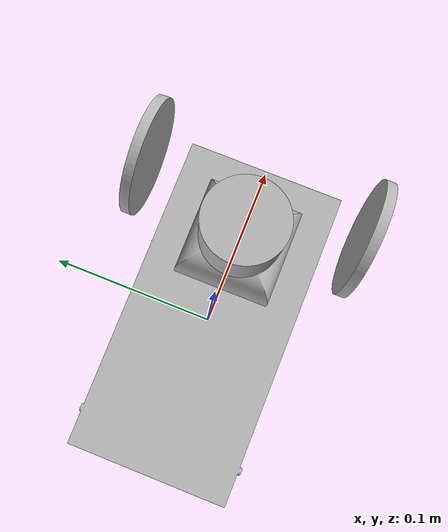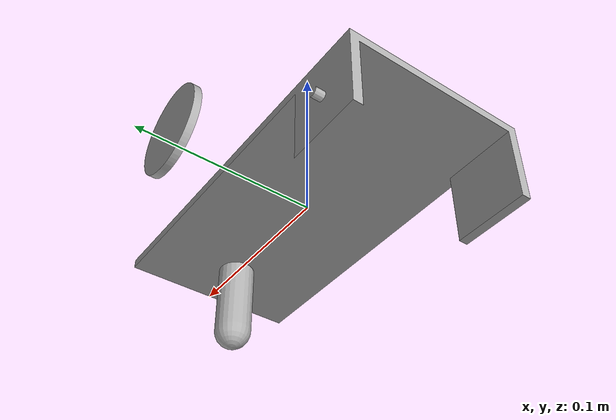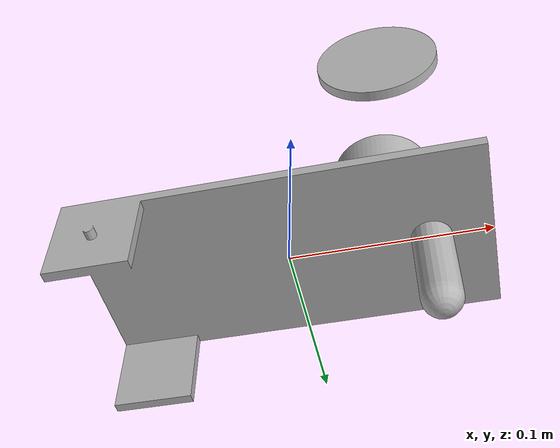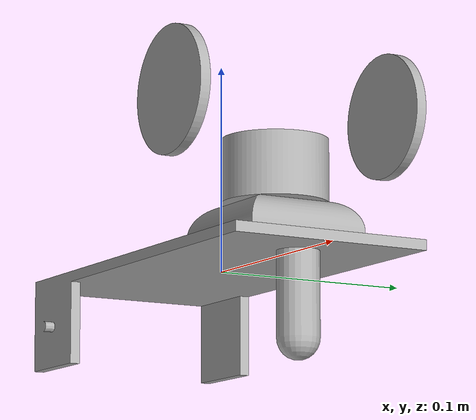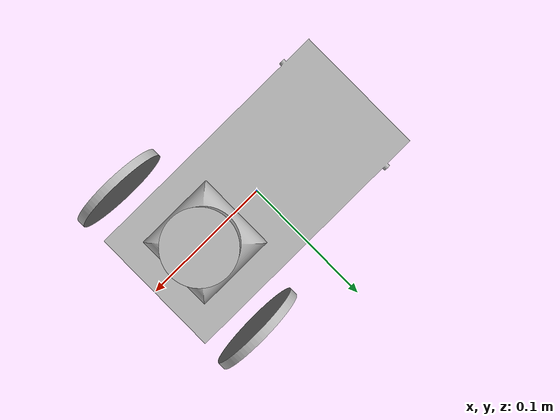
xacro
<?xml version="1.0" ?>
<robot name="line" xmlns:xacro="http://www.ros.org/wiki/xacro">

<xacro:include filename="$(find line_description)/urdf/materials.xacro" />
<xacro:include filename="$(find line_description)/urdf/line.trans" />
<xacro:include filename="$(find line_description)/urdf/line.gazebo" />
<link name="base_link">
  <inertial>
    <origin xyz="-0.002059149497132684 -5.2127163661440005e-17 -0.003185796874806724" rpy="0 0 0"/>
    <mass value="1.0272283547721792"/>
    <inertia ixx="0.001093" iyy="0.004157" izz="0.004954" ixy="-0.0" iyz="-0.0" ixz="-8e-06"/>
  </inertial>
  <visual>
    <origin xyz="0 0 0" rpy="0 0 0"/>
    <geometry>
      <mesh filename="package://line_description/meshes/base_link.stl" scale="0.001 0.001 0.001"/>
    </geometry>
    <material name="silver"/>
  </visual>
  <collision>
    <origin xyz="0 0 0" rpy="0 0 0"/>
    <geometry>
      <mesh filename="package://line_description/meshes/base_link.stl" scale="0.001 0.001 0.001"/>
    </geometry>
  </collision>
</link>

<link name="left_wheel_1">
  <inertial>
    <origin xyz="1.3877787807814457e-17 0.0025000000000000022 1.0408340855860843e-17" rpy="0 0 0"/>
    <mass value="0.11097676048805935"/>
    <inertia ixx="2.5e-05" iyy="5e-05" izz="2.5e-05" ixy="0.0" iyz="0.0" ixz="0.0"/>
  </inertial>
  <visual>
    <origin xyz="0.08 -0.055 0.02" rpy="0 0 0"/>
    <geometry>
      <mesh filename="package://line_description/meshes/left_wheel_1.stl" scale="0.001 0.001 0.001"/>
    </geometry>
    <material name="silver"/>
  </visual>
  <collision>
    <origin xyz="0.08 -0.055 0.02" rpy="0 0 0"/>
    <geometry>
      <mesh filename="package://line_description/meshes/left_wheel_1.stl" scale="0.001 0.001 0.001"/>
    </geometry>
  </collision>
</link>

<link name="right_wheel_1">
  <inertial>
    <origin xyz="1.3877787807814457e-17 -0.0025000000000000022 0.0" rpy="0 0 0"/>
    <mass value="0.1109767604880594"/>
    <inertia ixx="2.5e-05" iyy="5e-05" izz="2.5e-05" ixy="0.0" iyz="0.0" ixz="0.0"/>
  </inertial>
  <visual>
    <origin xyz="0.08 0.055 0.02" rpy="0 0 0"/>
    <geometry>
      <mesh filename="package://line_description/meshes/right_wheel_1.stl" scale="0.001 0.001 0.001"/>
    </geometry>
    <material name="silver"/>
  </visual>
  <collision>
    <origin xyz="0.08 0.055 0.02" rpy="0 0 0"/>
    <geometry>
      <mesh filename="package://line_description/meshes/right_wheel_1.stl" scale="0.001 0.001 0.001"/>
    </geometry>
  </collision>
</link>

<link name="mount_1">
  <inertial>
    <origin xyz="-0.04999999999999999 1.7763568394002505e-17 0.008919812957238041" rpy="0 0 0"/>
    <mass value="0.48439014073208936"/>
    <inertia ixx="0.000144" iyy="0.000144" izz="0.00026" ixy="-0.0" iyz="-0.0" ixz="-0.0"/>
  </inertial>
  <visual>
    <origin xyz="-0.1 -0.0 -0.005" rpy="0 0 0"/>
    <geometry>
      <mesh filename="package://line_description/meshes/mount_1.stl" scale="0.001 0.001 0.001"/>
    </geometry>
    <material name="silver"/>
  </visual>
  <collision>
    <origin xyz="-0.1 -0.0 -0.005" rpy="0 0 0"/>
    <geometry>
      <mesh filename="package://line_description/meshes/mount_1.stl" scale="0.001 0.001 0.001"/>
    </geometry>
  </collision>
</link>

<link name="lidar_1">
  <inertial>
    <origin xyz="0.0 0.0 0.014999999999999993" rpy="0 0 0"/>
    <mass value="0.46240316870024756"/>
    <inertia ixx="0.000107" iyy="0.000107" izz="0.000145" ixy="-0.0" iyz="-0.0" ixz="-0.0"/>
  </inertial>
  <visual>
    <origin xyz="-0.05 -0.0 -0.025" rpy="0 0 0"/>
    <geometry>
      <mesh filename="package://line_description/meshes/lidar_1.stl" scale="0.001 0.001 0.001"/>
    </geometry>
    <material name="silver"/>
  </visual>
  <collision>
    <origin xyz="-0.05 -0.0 -0.025" rpy="0 0 0"/>
    <geometry>
      <mesh filename="package://line_description/meshes/lidar_1.stl" scale="0.001 0.001 0.001"/>
    </geometry>
  </collision>
</link>

<joint name="Rev1" type="continuous">
  <origin xyz="-0.08 0.055 -0.02" rpy="0 0 0"/>
  <parent link="base_link"/>
  <child link="left_wheel_1"/>
  <axis xyz="0.0 1.0 0.0"/>
</joint>

<joint name="Rev2" type="continuous">
  <origin xyz="-0.08 -0.055 -0.02" rpy="0 0 0"/>
  <parent link="base_link"/>
  <child link="right_wheel_1"/>
  <axis xyz="0.0 1.0 0.0"/>
</joint>

<joint name="Rev3" type="continuous">
  <origin xyz="0.1 0.0 0.005" rpy="0 0 0"/>
  <parent link="base_link"/>
  <child link="mount_1"/>
  <axis xyz="0.0 0.0 1.0"/>
</joint>

<joint name="Rev4" type="continuous">
  <origin xyz="-0.05 0.0 0.02" rpy="0 0 0"/>
  <parent link="mount_1"/>
  <child link="lidar_1"/>
  <axis xyz="0.0 0.0 1.0"/>
</joint>

</robot>

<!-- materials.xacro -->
<robot name="line" xmlns:xacro="http://www.ros.org/wiki/xacro" >

<material name="silver">
  <color rgba="0.700 0.700 0.700 1.000"/>
</material>

</robot>

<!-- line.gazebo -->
<robot name="line" xmlns:xacro="http://www.ros.org/wiki/xacro" >

<xacro:property name="body_color" value="Gazebo/Silver" />

<gazebo>
  <plugin name="control" filename="libgazebo_ros_control.so"/>
</gazebo>
<gazebo reference="base_link">
  <material>${body_color}</material>
  <mu1>0.2</mu1>
  <mu2>0.2</mu2>
  <selfCollide>true</selfCollide>
  <gravity>true</gravity>
</gazebo>

<gazebo reference="left_wheel_1">
  <material>${body_color}</material>
  <mu1>0.2</mu1>
  <mu2>0.2</mu2>
  <selfCollide>true</selfCollide>
</gazebo>

<gazebo reference="right_wheel_1">
  <material>${body_color}</material>
  <mu1>0.2</mu1>
  <mu2>0.2</mu2>
  <selfCollide>true</selfCollide>
</gazebo>

<gazebo reference="mount_1">
  <material>${body_color}</material>
  <mu1>0.2</mu1>
  <mu2>0.2</mu2>
  <selfCollide>true</selfCollide>
</gazebo>

<gazebo reference="lidar_1">
  <material>${body_color}</material>
  <mu1>0.2</mu1>
  <mu2>0.2</mu2>
  <selfCollide>true</selfCollide>
</gazebo>
<gazebo>
  <plugin name="differential_drive_controller" filename="libgazebo_ros_diff_drive.so">

    <!-- Plugin update rate in Hz -->
    <updateRate>${1000}</updateRate>

    <!-- Name of left joint, defaults to `left_joint` -->
    <leftJoint>Rev1</leftJoint>

    <!-- Name of right joint, defaults to `right_joint` -->
    <rightJoint>Rev2</rightJoint>

    <!-- The distance from the center of one wheel to the other, in meters, defaults to 0.34 m -->
    <wheelSeparation>0.5380</wheelSeparation>

    <!-- Diameter of the wheels, in meters, defaults to 0.15 m -->
    <wheelDiameter>0.2410</wheelDiameter>

    <!-- Wheel acceleration, in rad/s^2, defaults to 0.0 rad/s^2 -->
    <wheelAcceleration>1.0</wheelAcceleration>

    <!-- Maximum torque which the wheels can produce, in Nm, defaults to 5 Nm -->
    <wheelTorque>20</wheelTorque>

    <!-- Topic to receive geometry_msgs/Twist message commands, defaults to `cmd_vel` -->
    <commandTopic>cmd_vel</commandTopic>

    <!-- Topic to publish nav_msgs/Odometry messages, defaults to `odom` -->
    <odometryTopic>odom</odometryTopic>

    <!-- Odometry frame, defaults to `odom` -->
    <odometryFrame>odom</odometryFrame>

    <!-- Robot frame to calculate odometry from, defaults to `base_footprint` -->
    <robotBaseFrame>base_link</robotBaseFrame>

    <!-- Odometry source, 0 for ENCODER, 1 for WORLD, defaults to WORLD -->
    <odometrySource>1</odometrySource>

    <!-- Set to true to publish transforms for the wheel links, defaults to false -->
    <publishWheelTF>true</publishWheelTF>

    <!-- Set to true to publish transforms for the odometry, defaults to true -->
    <publishOdom>true</publishOdom>

    <!-- Set to true to publish sensor_msgs/JointState on /joint_states for the wheel joints, defaults to false -->
    <publishWheelJointState>true</publishWheelJointState>

    <!-- Set to true to swap right and left wheels, defaults to true -->
    <legacyMode>false</legacyMode>
  </plugin>
</gazebo>
</robot>
